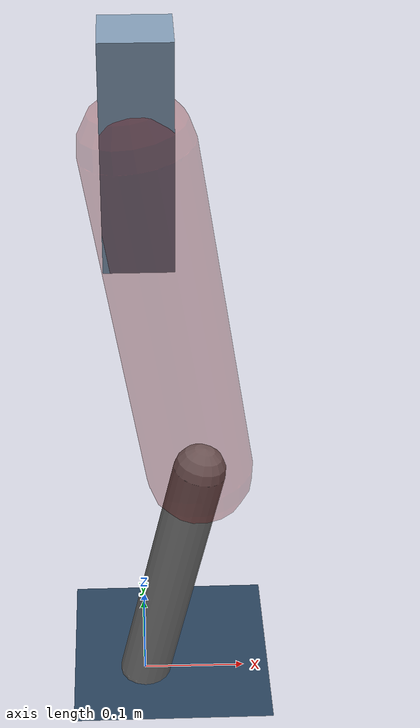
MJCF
<mujoco model="Hopper2D">
	<compiler inertiafromgeom="true" angle="radian" />
	<option timestep="0.001" integrator="implicit" cone="elliptic" solver="Newton" tolerance="1e-10" />

	<default>
		<geom contype="1" conaffinity="1" condim="3" friction="2 0.005 0.0001" solref="0.005 1" />
		<joint limited="true" damping="0.1" />
	</default>

	<asset>
		<texture name="skybox" type="skybox" builtin="gradient" rgb1=".4 .6 .8" rgb2="0 0 0" width="800" height="800" />
		<texture name="grid" type="2d" builtin="checker" rgb1=".1 .2 .3" rgb2=".2 .3 .4" width="300" height="300" mark="edge" markrgb=".2 .3 .4" />
		<material name="ground" texture="grid" texrepeat="1 1" texuniform="true" reflectance="0.1" />
		<material name="leg" rgba="0.5 0.6 0.7 1" />
	</asset>

	<worldbody>

		<geom name="floor" type="plane" size="5 5 0.25" material="ground" />

		<light directional="false" diffuse="0.8 0.8 0.8" specular="0.3 0.3 0.3" pos="0 0 2" dir="0 0 -1" />
		<light mode="targetbodycom" target="base" directional="false" diffuse="0.8 0.8 0.8" specular="0.3 0.3 0.3" pos="0 0 2" dir="0 0 -1" />

		<camera name="fixed" pos="0 -2 1" xyaxes="1 0 0 0 0 1" />
		<camera name="tracking" mode="trackcom" pos="0 -3 1" />

		<body name="root" pos="0 0 0.5795763550203888">
			<joint name="slide_x" type="slide" axis="1 0 0" range="-100 100" />
			<joint name="slide_z" type="slide" axis="0 0 1" range="0 10" />

			<body name="base" pos="0 0 0">
				<geom name="torso" type="box" size="0.03 0.03 0.1" mass="2.606" material="leg" />

				<body name="link1" pos="0 0 0" euler="0 1.4095567286820296 0">
					<joint type="hinge" axis="0 -1 0" pos="0 0 0" name="hinge1" limited="true" range="-3.14 3.14" stiffness="0" damping="0.1" />
					<geom name="thigh" type="capsule" fromto="0 0 0 0.333706778863383 0 0" size="0.05" rgba="0.5 0 0 0.3" mass="1.0811083029311341" />

					<body name="link2" pos="0.333706778863383 0 0" euler="0 0.3721801865258598 0">
						<joint type="hinge" axis="0 -1 0" pos="0 0 0" name="hinge2" limited="true" range="-3.14 3.14" stiffness="0" damping="0.1" />
						<geom name="shank" type="capsule" fromto="0 0 0 0.25586957615700584 0 0" size="0.025" mass="0.44738261854130523" />

					</body>
				</body>
			</body>
		</body>
	</worldbody>

	<actuator>
		<motor name="torque1" joint="hinge1" ctrlrange="-89.25216974166072 89.25216974166072" ctrllimited="true" gear="1" />
		<motor name="torque2" joint="hinge2" ctrlrange="-103.6244134976273 103.6244134976273" ctrllimited="true" gear="1" />
	</actuator>
</mujoco>
